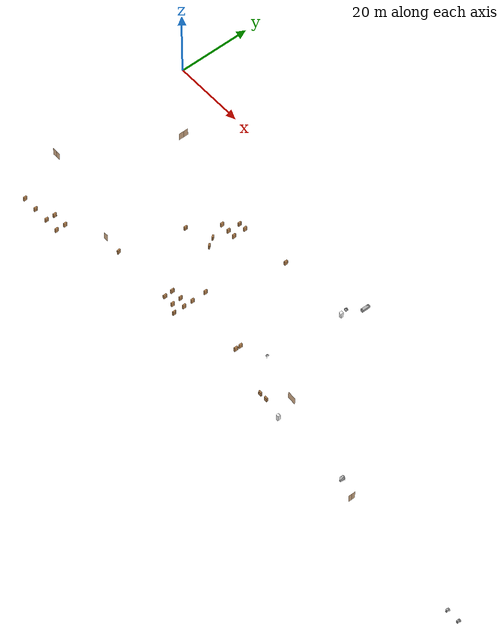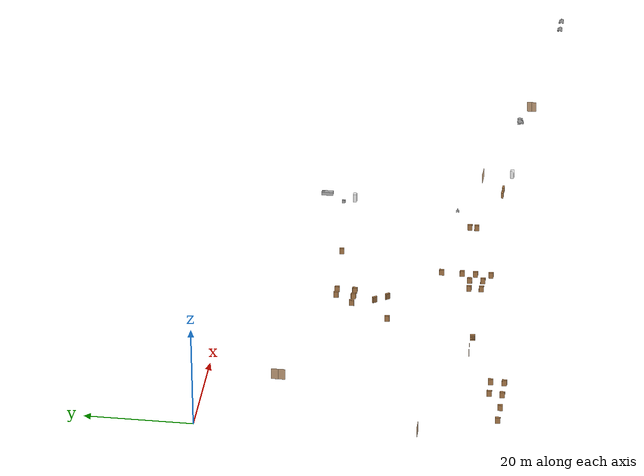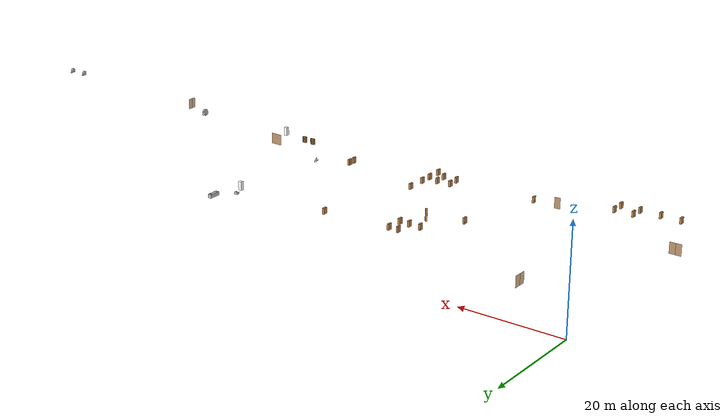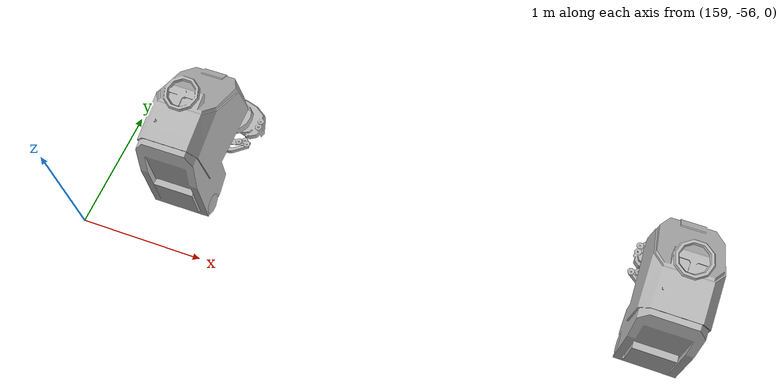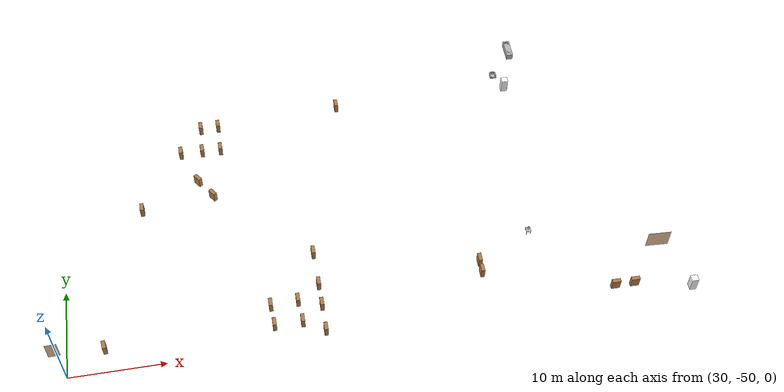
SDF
<sdf version="1.7">
 <world name="sim_world">
  <physics name="10ms" type="ode">
   <max_step_size>0.01</max_step_size>
   <real_time_factor>1.0</real_time_factor>
  </physics>
  <plugin filename="libgz-sim-physics-system.so" name="gz::sim::systems::Physics"/>
  <plugin filename="libgz-sim-user-commands-system.so" name="gz::sim::systems::UserCommands"/>
  <plugin filename="libgz-sim-scene-broadcaster-system.so" name="gz::sim::systems::SceneBroadcaster"/>
  <plugin filename="libdoor.so" name="door"/>
  <plugin filename="liblift.so" name="lift"/>
  <scene><ambient>1 1 1</ambient><background>0.8 0.8 0.8</background><grid>false</grid></scene>
  <light type="directional" name="sun">
   <pose>0 0 10 0 0 0</pose>
   <diffuse>1 1 1 1</diffuse>
   <specular>0.2 0.2 0.2 1</specular>
   <attenuation>
    <range>1000</range>
    <constant>0.09</constant>
    <linear>0.001</linear>
    <quadratic>0.001</quadratic>
   </attenuation>
   <direction>-0.5 0.1 -0.9</direction>
  </light>
  <include>
   <name>Fridge</name>
   <uri>model://Fridge</uri>
   <pose>81.89234267903652 -19.580975229470475 0.0 0 0 -0.0006</pose>
   <static>True</static>
  </include>
  <include>
   <name>Bookshelf</name>
   <uri>model://Bookshelf</uri>
   <pose>61.473724341753524 -19.398828914457916 0.0 0 0 1.5708</pose>
   <static>True</static>
  </include>
  <include>
   <name>KitchenCountertop</name>
   <uri>model://KitchenCountertop</uri>
   <pose>83.79026129321836 -13.78234975470173 0.0 0 0 -0.0098</pose>
   <static>True</static>
  </include>
  <include>
   <name>MiniSofa</name>
   <uri>model://MiniSofa</uri>
   <pose>81.10438330457954 -17.398997055492206 0.0 0 0 1.5708</pose>
   <static>True</static>
  </include>
  <include>
   <name>Bookshelf_2</name>
   <uri>model://Bookshelf</uri>
   <pose>43.02299245471673 -23.55066446364193 0.0 0 0 1.5708</pose>
   <static>True</static>
  </include>
  <include>
   <name>Bookshelf_3</name>
   <uri>model://Bookshelf</uri>
   <pose>45.54725459667171 -20.259548268671924 0.0 0 0 1.5708</pose>
   <static>True</static>
  </include>
  <include>
   <name>Bookshelf_4</name>
   <uri>model://Bookshelf</uri>
   <pose>45.43294094901731 -23.592792984652505 0.0 0 0 1.5708</pose>
   <static>True</static>
  </include>
  <include>
   <name>Bookshelf_5</name>
   <uri>model://Bookshelf</uri>
   <pose>47.528116302901665 -20.240495994062854 0.0 0 0 1.5708</pose>
   <static>True</static>
  </include>
  <include>
   <name>Bookshelf_6</name>
   <uri>model://Bookshelf</uri>
   <pose>47.5090640282926 -23.63089753387064 0.0 0 0 1.5708</pose>
   <static>True</static>
  </include>
  <include>
   <name>Bookshelf_7</name>
   <uri>model://Bookshelf</uri>
   <pose>38.268382355400966 -30.849656563874845 0.0 0 0 1.5708</pose>
   <static>True</static>
  </include>
  <include>
   <name>Bookshelf_8</name>
   <uri>model://Bookshelf</uri>
   <pose>44.693515601689484 -27.89409034326973 0.0 0 0 2.1996</pose>
   <static>True</static>
  </include>
  <include>
   <name>Bookshelf_9</name>
   <uri>model://Bookshelf</uri>
   <pose>46.1584876997549 -30.181430880711083 0.0 0 0 2.188</pose>
   <static>True</static>
  </include>
  <include>
   <name>Bookshelf_10</name>
   <uri>model://Bookshelf</uri>
   <pose>89.11742509328596 -48.86793466603511 0.0 0 0 3.1321</pose>
   <static>True</static>
  </include>
  <include>
   <name>Bookshelf_11</name>
   <uri>model://Bookshelf</uri>
   <pose>87.05370241688124 -48.837138963542 0.0 0 0 3.1357</pose>
   <static>True</static>
  </include>
  <include>
   <name>LampAndStand</name>
   <uri>model://LampAndStand</uri>
   <pose>79.68695977116349 -40.3403172191372 0.0 0 0 1.5708</pose>
   <static>True</static>
  </include>
  <include>
   <name>Bookshelf_12</name>
   <uri>model://Bookshelf</uri>
   <pose>56.071911758842624 -43.45585684895984 0.0 0 0 1.5708</pose>
   <static>True</static>
  </include>
  <include>
   <name>Bookshelf_13</name>
   <uri>model://Bookshelf</uri>
   <pose>56.071911758842624 -45.999499753017155 0.0 0 0 1.5708</pose>
   <static>True</static>
  </include>
  <include>
   <name>Bookshelf_14</name>
   <uri>model://Bookshelf</uri>
   <pose>56.071911758842624 -48.997358738379475 0.0 0 0 1.5708</pose>
   <static>True</static>
  </include>
  <include>
   <name>Bookshelf_15</name>
   <uri>model://Bookshelf</uri>
   <pose>50.807817557480895 -45.22188773459788 0.0 0 0 1.5708</pose>
   <static>True</static>
  </include>
  <include>
   <name>Bookshelf_16</name>
   <uri>model://Bookshelf</uri>
   <pose>50.932642804919624 -47.59373167968031 0.0 0 0 1.5708</pose>
   <static>True</static>
  </include>
  <include>
   <name>Bookshelf_17</name>
   <uri>model://Bookshelf</uri>
   <pose>53.67896249231824 -45.09706248715915 0.0 0 0 1.5708</pose>
   <static>True</static>
  </include>
  <include>
   <name>Bookshelf_18</name>
   <uri>model://Bookshelf</uri>
   <pose>53.85733120115832 -47.629372572699005 0.0 0 0 1.5574</pose>
   <static>True</static>
  </include>
  <include>
   <name>Bookshelf_19</name>
   <uri>model://Bookshelf</uri>
   <pose>56.041608787589404 -39.48904188035441 0.0 0 0 1.5708</pose>
   <static>True</static>
  </include>
  <include>
   <name>Bookshelf_20</name>
   <uri>model://Bookshelf</uri>
   <pose>73.37975353495524 -44.71790579806402 0.0 0 0 1.5708</pose>
   <static>True</static>
  </include>
  <include>
   <name>Bookshelf_21</name>
   <uri>model://Bookshelf</uri>
   <pose>73.41383411238094 -43.3534508729361 0.0 0 0 1.5708</pose>
   <static>True</static>
  </include>
  <include>
   <name>Bookshelf_22</name>
   <uri>model://Bookshelf</uri>
   <pose>34.02087482380503 -47.4250533518914 0.0 0 0 -1.4328</pose>
   <static>True</static>
  </include>
  <include>
   <name>Bookshelf_23</name>
   <uri>model://Bookshelf</uri>
   <pose>6.880827521313181 -54.438014967368346 0.0 0 0 1.5708</pose>
   <static>True</static>
  </include>
  <include>
   <name>Bookshelf_24</name>
   <uri>model://Bookshelf</uri>
   <pose>10.997597030591715 -54.531223293580815 0.0 0 0 1.5708</pose>
   <static>True</static>
  </include>
  <include>
   <name>Bookshelf_25</name>
   <uri>model://Bookshelf</uri>
   <pose>15.352191484990348 -52.17736403875435 0.0 0 0 1.5708</pose>
   <static>True</static>
  </include>
  <include>
   <name>Bookshelf_26</name>
   <uri>model://Bookshelf</uri>
   <pose>19.196891227976447 -52.11199502759565 0.0 0 0 1.5708</pose>
   <static>True</static>
  </include>
  <include>
   <name>Bookshelf_27</name>
   <uri>model://Bookshelf</uri>
   <pose>15.207492744209404 -54.575733348917524 0.0 0 0 1.5708</pose>
   <static>True</static>
  </include>
  <include>
   <name>Bookshelf_28</name>
   <uri>model://Bookshelf</uri>
   <pose>19.159854263111406 -54.633875635224506 0.0 0 0 1.5708</pose>
   <static>True</static>
  </include>
  <include>
   <name>Fridge_2</name>
   <uri>model://Fridge</uri>
   <pose>95.01894927531835 -49.95498190310512 0.0 0 0 1.5708</pose>
   <static>True</static>
  </include>
  <include>
   <name>mopcart_dispenser</name>
   <uri>model://TeleportDispenser</uri>
   <pose>23.346427364707647 -36.437475189844115 0.0 0 0 1.5708</pose>
   <static>True</static>
  </include>
  <include>
   <name>mopcart_collector</name>
   <uri>model://TeleportIngestor</uri>
   <pose>26.063183177712883 -48.37701010735832 0.0 0 0 1.5708</pose>
   <static>True</static>
  </include>
  <include>
   <name>cleanerBotE_0</name>
   <uri>model://CleanerBotE</uri>
   <pose>159.69854730754096 -55.561195828696945 0.0 0 0 1.5709567322986409</pose>
  </include>
  <include>
   <name>cleanerBotE_1</name>
   <uri>model://CleanerBotE</uri>
   <pose>163.4232669936139 -55.62590786486911 0.0 0 0 1.562578286309474</pose>
  </include>
  <include>
   <name>cleanerBotA_0</name>
   <uri>model://CleanerBotA</uri>
   <pose>117.41259866582594 -49.48039959721802 0.0 0 0 -1.5730303359239728</pose>
  </include>
  <model name="n02_door">
   <pose>16.32952389931159 -13.189019220001205 0.0 0 0 1.5676337427711504</pose>
   <link name="right">
    <pose>0.6621519759371044 0 1.11 0 0 0</pose>
    <visual name="right_visual">
     <geometry><box><size>1.3143039518742088 0.03 2.2</size></box></geometry>
     <material>
      <ambient>0.5 0.25 0 0.6</ambient>
      <diffuse>0.5 0.25 0 0.6</diffuse>
      <pbr><metal><metalness>0.0</metalness></metal></pbr>
     </material>
    </visual>
    <collision name="right_collision">
     <geometry><box><size>1.3143039518742088 0.03 2.2</size></box></geometry>
     <surface><contact><collide_bitmask>0x02</collide_bitmask></contact></surface>
    </collision>
    <inertial>
     <mass>50.0</mass>
     <inertia><ixx>20.17041666666667</ixx><iyy>27.364145324634016</iyy><izz>7.201228657967344</izz></inertia>
    </inertial>
   </link>
   <joint name="right_joint" type="revolute">
    <parent>world</parent>
    <child>right</child>
    <axis><xyz>0 0 1</xyz><limit><lower>0</lower><upper>1.6572222222222224</upper></limit></axis>
    <pose>0.6621519759371044 0 0 0 0 0</pose>
   </joint>
   <link name="left">
    <pose>-0.6621519759371044 0 1.11 0 0 0</pose>
    <visual name="left_visual">
     <geometry><box><size>1.3143039518742088 0.03 2.2</size></box></geometry>
     <material>
      <ambient>0.5 0.25 0 0.6</ambient>
      <diffuse>0.5 0.25 0 0.6</diffuse>
      <pbr><metal><metalness>0.0</metalness></metal></pbr>
     </material>
    </visual>
    <collision name="left_collision">
     <geometry><box><size>1.3143039518742088 0.03 2.2</size></box></geometry>
     <surface><contact><collide_bitmask>0x02</collide_bitmask></contact></surface>
    </collision>
    <inertial>
     <mass>50.0</mass>
     <inertia><ixx>20.17041666666667</ixx><iyy>27.364145324634016</iyy><izz>7.201228657967344</izz></inertia>
    </inertial>
   </link>
   <joint name="left_joint" type="revolute">
    <parent>world</parent>
    <child>left</child>
    <axis><xyz>0 0 1</xyz><limit><lower>-1.6572222222222224</lower><upper>0</upper></limit></axis>
    <pose>-0.6621519759371044 0 0 0 0 0</pose>
   </joint>
   <plugin name="register_component" filename="libregister_component.so">
    <component name="Door">
     <v_max_door>0.5</v_max_door>
     <a_max_door>0.3</a_max_door>
     <a_nom_door>0.15</a_nom_door>
     <dx_min_door>0.01</dx_min_door>
     <f_max_door>500.0</f_max_door>
     <ros_interface>true</ros_interface>
     <door name="n02_door" type="DoubleSwingDoor" left_joint_name="left_joint" right_joint_name="right_joint"/>
    </component>
   </plugin>
  </model>
  <model name="n01_door">
   <pose>1.5235249937389859 -40.44986779813934 0.0 0 0 3.134201392889213</pose>
   <link name="right">
    <pose>0.5888709777587251 0 1.11 0 0 0</pose>
    <visual name="right_visual">
     <geometry><box><size>1.1677419555174502 0.03 2.2</size></box></geometry>
     <material>
      <ambient>0.5 0.25 0 0.6</ambient>
      <diffuse>0.5 0.25 0 0.6</diffuse>
      <pbr><metal><metalness>0.0</metalness></metal></pbr>
     </material>
    </visual>
    <collision name="right_collision">
     <geometry><box><size>1.1677419555174502 0.03 2.2</size></box></geometry>
     <surface><contact><collide_bitmask>0x02</collide_bitmask></contact></surface>
    </collision>
    <inertial>
     <mass>50.0</mass>
     <inertia><ixx>20.17041666666667</ixx><iyy>25.8484219778155</iyy><izz>5.685505311148828</izz></inertia>
    </inertial>
   </link>
   <joint name="right_joint" type="revolute">
    <parent>world</parent>
    <child>right</child>
    <axis><xyz>0 0 1</xyz><limit><lower>0</lower><upper>1.6572222222222224</upper></limit></axis>
    <pose>0.5888709777587251 0 0 0 0 0</pose>
   </joint>
   <link name="left">
    <pose>-0.5888709777587251 0 1.11 0 0 0</pose>
    <visual name="left_visual">
     <geometry><box><size>1.1677419555174502 0.03 2.2</size></box></geometry>
     <material>
      <ambient>0.5 0.25 0 0.6</ambient>
      <diffuse>0.5 0.25 0 0.6</diffuse>
      <pbr><metal><metalness>0.0</metalness></metal></pbr>
     </material>
    </visual>
    <collision name="left_collision">
     <geometry><box><size>1.1677419555174502 0.03 2.2</size></box></geometry>
     <surface><contact><collide_bitmask>0x02</collide_bitmask></contact></surface>
    </collision>
    <inertial>
     <mass>50.0</mass>
     <inertia><ixx>20.17041666666667</ixx><iyy>25.8484219778155</iyy><izz>5.685505311148828</izz></inertia>
    </inertial>
   </link>
   <joint name="left_joint" type="revolute">
    <parent>world</parent>
    <child>left</child>
    <axis><xyz>0 0 1</xyz><limit><lower>-1.6572222222222224</lower><upper>0</upper></limit></axis>
    <pose>-0.5888709777587251 0 0 0 0 0</pose>
   </joint>
   <plugin name="register_component" filename="libregister_component.so">
    <component name="Door">
     <v_max_door>0.5</v_max_door>
     <a_max_door>0.3</a_max_door>
     <a_nom_door>0.15</a_nom_door>
     <dx_min_door>0.01</dx_min_door>
     <f_max_door>500.0</f_max_door>
     <ros_interface>true</ros_interface>
     <door name="n01_door" type="DoubleSwingDoor" left_joint_name="left_joint" right_joint_name="right_joint"/>
    </component>
   </plugin>
  </model>
  <model name="s04_door">
   <pose>28.73390968072509 -47.274154409675184 0.0 0 0 -3.1081700415635134</pose>
   <link name="right">
    <pose>0 0 1.11 0 0 0</pose>
    <visual name="right_visual">
     <geometry><box><size>1.2015636603492745 0.03 2.2</size></box></geometry>
     <material>
      <ambient>0.5 0.25 0 0.6</ambient>
      <diffuse>0.5 0.25 0 0.6</diffuse>
      <pbr><metal><metalness>0.0</metalness></metal></pbr>
     </material>
    </visual>
    <collision name="right_collision">
     <geometry><box><size>1.2015636603492745 0.03 2.2</size></box></geometry>
     <surface><contact><collide_bitmask>0x02</collide_bitmask></contact></surface>
    </collision>
    <inertial>
     <mass>50.0</mass>
     <inertia><ixx>20.17041666666667</ixx><iyy>26.182313457799783</iyy><izz>6.019396791133111</izz></inertia>
    </inertial>
   </link>
   <joint name="right_joint" type="revolute">
    <parent>world</parent>
    <child>right</child>
    <axis><xyz>0 0 -1</xyz><limit><lower>0</lower><upper>1.6572222222222224</upper></limit></axis>
    <pose>0.6057818301746373 0 0 0 0 0</pose>
   </joint>
   <plugin name="register_component" filename="libregister_component.so">
    <component name="Door">
     <v_max_door>0.5</v_max_door>
     <a_max_door>0.3</a_max_door>
     <a_nom_door>0.15</a_nom_door>
     <dx_min_door>0.01</dx_min_door>
     <f_max_door>500.0</f_max_door>
     <ros_interface>true</ros_interface>
     <door name="s04_door" type="SwingDoor" left_joint_name="empty_joint" right_joint_name="right_joint"/>
    </component>
   </plugin>
  </model>
  <model name="s08_door">
   <pose>93.01533981018017 -44.236384193881804 0.0 0 0 -0.04792369781717709</pose>
   <link name="right">
    <pose>0 0 1.11 0 0 0</pose>
    <visual name="right_visual">
     <geometry><box><size>2.4328097402213444 0.03 2.2</size></box></geometry>
     <material>
      <ambient>0.5 0.25 0 0.6</ambient>
      <diffuse>0.5 0.25 0 0.6</diffuse>
      <pbr><metal><metalness>0.0</metalness></metal></pbr>
     </material>
    </visual>
    <collision name="right_collision">
     <geometry><box><size>2.4328097402213444 0.03 2.2</size></box></geometry>
     <surface><contact><collide_bitmask>0x02</collide_bitmask></contact></surface>
    </collision>
    <inertial>
     <mass>50.0</mass>
     <inertia><ixx>20.17041666666667</ixx><iyy>44.8273468004827</iyy><izz>24.664430133816023</izz></inertia>
    </inertial>
   </link>
   <joint name="right_joint" type="revolute">
    <parent>world</parent>
    <child>right</child>
    <axis><xyz>0 0 1</xyz><limit><lower>0</lower><upper>1.57</upper></limit></axis>
    <pose>1.2214048701106721 0 0 0 0 0</pose>
   </joint>
   <plugin name="register_component" filename="libregister_component.so">
    <component name="Door">
     <v_max_door>0.5</v_max_door>
     <a_max_door>0.3</a_max_door>
     <a_nom_door>0.15</a_nom_door>
     <dx_min_door>0.01</dx_min_door>
     <f_max_door>500.0</f_max_door>
     <ros_interface>true</ros_interface>
     <door name="s08_door" type="SwingDoor" left_joint_name="empty_joint" right_joint_name="right_joint"/>
    </component>
   </plugin>
  </model>
  <model name="zone_4_door">
   <pose>122.95221175215931 -51.78087963438976 0.0 0 0 1.576711873276658</pose>
   <link name="right">
    <pose>0.4720037254296668 0 1.11 0 0 0</pose>
    <visual name="right_visual">
     <geometry><box><size>0.9340074508593336 0.03 2.2</size></box></geometry>
     <material>
      <ambient>0.5 0.25 0 0.6</ambient>
      <diffuse>0.5 0.25 0 0.6</diffuse>
      <pbr><metal><metalness>0.0</metalness></metal></pbr>
     </material>
    </visual>
    <collision name="right_collision">
     <geometry><box><size>0.9340074508593336 0.03 2.2</size></box></geometry>
     <surface><contact><collide_bitmask>0x02</collide_bitmask></contact></surface>
    </collision>
    <inertial>
     <mass>50.0</mass>
     <inertia><ixx>20.17041666666667</ixx><iyy>23.801541326086465</iyy><izz>3.6386246594197935</izz></inertia>
    </inertial>
   </link>
   <joint name="right_joint" type="revolute">
    <parent>world</parent>
    <child>right</child>
    <axis><xyz>0 0 -1</xyz><limit><lower>0</lower><upper>1.57</upper></limit></axis>
    <pose>0.4720037254296668 0 0 0 0 0</pose>
   </joint>
   <link name="left">
    <pose>-0.4720037254296668 0 1.11 0 0 0</pose>
    <visual name="left_visual">
     <geometry><box><size>0.9340074508593336 0.03 2.2</size></box></geometry>
     <material>
      <ambient>0.5 0.25 0 0.6</ambient>
      <diffuse>0.5 0.25 0 0.6</diffuse>
      <pbr><metal><metalness>0.0</metalness></metal></pbr>
     </material>
    </visual>
    <collision name="left_collision">
     <geometry><box><size>0.9340074508593336 0.03 2.2</size></box></geometry>
     <surface><contact><collide_bitmask>0x02</collide_bitmask></contact></surface>
    </collision>
    <inertial>
     <mass>50.0</mass>
     <inertia><ixx>20.17041666666667</ixx><iyy>23.801541326086465</iyy><izz>3.6386246594197935</izz></inertia>
    </inertial>
   </link>
   <joint name="left_joint" type="revolute">
    <parent>world</parent>
    <child>left</child>
    <axis><xyz>0 0 -1</xyz><limit><lower>-1.57</lower><upper>0</upper></limit></axis>
    <pose>-0.4720037254296668 0 0 0 0 0</pose>
   </joint>
   <plugin name="register_component" filename="libregister_component.so">
    <component name="Door">
     <v_max_door>0.5</v_max_door>
     <a_max_door>0.3</a_max_door>
     <a_nom_door>0.15</a_nom_door>
     <dx_min_door>0.01</dx_min_door>
     <f_max_door>500.0</f_max_door>
     <ros_interface>true</ros_interface>
     <door name="zone_4_door" type="DoubleSwingDoor" left_joint_name="left_joint" right_joint_name="right_joint"/>
    </component>
   </plugin>
  </model>
  <rmf_charger_waypoints name="charger_waypoints">
   <rmf_vertex name="charger_tinyRobot_3" x="267.0690369387946" y="-61.44563866107981" level="L1"/>
   <rmf_vertex name="charger_tinyRobot_2" x="265.0190286152335" y="-61.44563866107981" level="L1"/>
   <rmf_vertex name="charger_tinyRobot_1" x="262.8078150543551" y="-61.44563866107981" level="L1"/>
   <rmf_vertex name="charger_tinyRobot_0" x="260.3432555143001" y="-61.4225624146783" level="L1"/>
   <rmf_vertex name="n03" x="21.776503512545712" y="-27.451042836735567" level="L1"/>
   <rmf_vertex name="charger_deliveryRobot_0" x="12.14664628201452" y="-1.7813876759479343" level="L1"/>
   <rmf_vertex name="charger_deliveryRobot_1" x="15.053432109870556" y="-6.301950436316086" level="L1"/>
   <rmf_vertex name="charger_deliveryRobot_2" x="14.776845640545796" y="-9.279278953349664" level="L1"/>
   <rmf_vertex name="n13" x="86.4971624814258" y="-9.632567252350587" level="L1"/>
   <rmf_vertex name="s08" x="96.59527863359884" y="-51.964504143122" level="L1"/>
   <rmf_vertex name="s11" x="152.34773630524631" y="-44.31862925000672" level="L1"/>
   <rmf_vertex name="s03" x="28.719661535704944" y="-51.1928870214547" level="L1"/>
   <rmf_vertex name="s07" x="67.96710086476676" y="-49.36132288091133" level="L1"/>
   <rmf_vertex name="charger_cleanerBotE_0" x="159.69854730754096" y="-55.561195828696945" level="L1"/>
   <rmf_vertex name="charger_cleanerBotE_1" x="163.4232669936139" y="-55.62590786486911" level="L1"/>
   <rmf_vertex name="charger_cleanerBotA_0" x="117.41259866582594" y="-49.48039959721802" level="L1"/>
  </rmf_charger_waypoints>
  <plugin filename="libcrowd_simulator.so" name="crowd_simulation">
   <behavior_file>behavior_file.xml</behavior_file>
   <scene_file>scene_file.xml</scene_file>
   <update_time_step>0.1</update_time_step>
   <model_type>
    <typename>human</typename>
    <animation>walk</animation>
    <animation_speed>1</animation_speed>
    <filename>model://MaleVisitorPhone</filename>
    <initial_pose>0 0 0 0 0 0</initial_pose>
   </model_type>
   <external_agent>tinyRobot_3</external_agent>
   <external_agent>deliveryRobot_2</external_agent>
   <external_agent>tinyRobot_2</external_agent>
   <external_agent>deliveryRobot_0</external_agent>
   <external_agent>deliveryRobot_1</external_agent>
   <external_agent>tinyRobot_0</external_agent>
   <external_agent>tinyRobot_1</external_agent>
   <external_agent>cleanerBotE_0</external_agent>
   <external_agent>cleanerBotE_1</external_agent>
   <external_agent>cleanerBotA_0</external_agent>
   <external_agent>caddy</external_agent>
  </plugin>
 </world>
</sdf>

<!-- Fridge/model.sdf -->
<sdf version="1.6">
  <model name="Fridge">
    <static>true</static>
    <link name="base_link">
      <visual name="visual">
        <geometry>
          <mesh>
            <uri>meshes/fridge.dae</uri>
          </mesh>
        </geometry>
        <material>
          <diffuse>1.0 1.0 1.0</diffuse>
          <specular>1.0 1.0 1.0</specular>
          <pbr>
            <metal>
              <albedo_map>materials/textures/Fridge_Albedo.jpg</albedo_map>
              <normal_map>materials/textures/Fridge_Normal.png</normal_map>
              <roughness_map>materials/textures/Fridge_Roughness.jpg</roughness_map>
              <metalness_map>materials/textures/Fridge_Metalness.jpg</metalness_map>
            </metal>
          </pbr>
        </material>
      </visual>
      <collision name="Box001">
        <pose>0.0 0.0 0.867923 0.0 0.0 0.0</pose>
        <geometry>
          <box>
            <size>0.734673 0.7239 1.73585</size>
          </box>
        </geometry>
      </collision>
    </link>
  </model>
</sdf>

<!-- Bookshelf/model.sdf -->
<sdf version="1.5">
  <model name="Bookshelf">
    <static>true</static>
    <link name="link">
      <inertial>
        <mass>1.0</mass>
      </inertial>
      <collision name="back">
        <pose>0 0.005 0.6 0 0 0</pose>
        <geometry>
          <box>
            <size>0.9 0.01 1.2</size>
          </box>
        </geometry>
      </collision>
      <visual name="visual1">
        <pose>0 0.005 0.6 0 0 0</pose>
        <geometry>
          <box>
            <size>0.9 0.01 1.2</size>
          </box>
        </geometry>
        <material>
          <diffuse>1.0 1.0 1.0</diffuse>
          <script>
            <uri>file://media/materials/scripts/gazebo.material</uri>
            <name>Gazebo/Wood</name>
          </script>
          <!-- PBR for Ignition, material scripts for gazebo classic-->
          <pbr>
            <metal>
              <albedo_map>model://Bookshelf/bookshelf_diffuse.jpg</albedo_map>
            </metal>
          </pbr>
        </material>
      </visual>
      <collision name="left_side">
        <pose>0.45 -0.195 0.6 0 0 0</pose>
        <geometry>
          <box>
            <size>0.02 0.4 1.2</size>
          </box>
        </geometry>
      </collision>
      <visual name="visual2">
        <pose>0.45 -0.195 0.6 0 0 0</pose>
        <geometry>
          <box>
            <size>0.02 0.4 1.2</size>
          </box>
        </geometry>
        <material>
          <diffuse>1.0 1.0 1.0</diffuse>
          <script>
            <uri>file://media/materials/scripts/gazebo.material</uri>
            <name>Gazebo/Wood</name>
          </script>
          <!-- PBR for Ignition, material scripts for gazebo classic-->
          <pbr>
            <metal>
              <albedo_map>model://Bookshelf/bookshelf_diffuse.jpg</albedo_map>
            </metal>
          </pbr>
        </material>
      </visual>
      <collision name="right_side">
        <pose>-0.45 -0.195 0.6 0 0 0</pose>
        <geometry>
          <box>
            <size>0.02 0.4 1.2</size>
          </box>
        </geometry>
      </collision>
      <visual name="visual3">
        <pose>-0.45 -0.195 0.6 0 0 0</pose>
        <geometry>
          <box>
            <size>0.02 0.4 1.2</size>
          </box>
        </geometry>
        <material>
          <diffuse>1.0 1.0 1.0</diffuse>
          <script>
            <uri>file://media/materials/scripts/gazebo.material</uri>
            <name>Gazebo/Wood</name>
          </script>
          <!-- PBR for Ignition, material scripts for gazebo classic-->
          <pbr>
            <metal>
              <albedo_map>model://Bookshelf/bookshelf_diffuse.jpg</albedo_map>
            </metal>
          </pbr>
        </material>
      </visual>
      <collision name="bottom">
        <pose>0 -0.195 0.03 0 0 0</pose>
        <geometry>
          <box>
            <size>0.88 0.4 0.06</size>
          </box>
        </geometry>
      </collision>
      <visual name="visual4">
        <pose>0 -0.195 0.03 0 0 0</pose>
        <geometry>
          <box>
            <size>0.88 0.4 0.06</size>
          </box>
        </geometry>
        <material>
          <diffuse>1.0 1.0 1.0</diffuse>
          <script>
            <uri>file://media/materials/scripts/gazebo.material</uri>
            <name>Gazebo/Wood</name>
          </script>
          <!-- PBR for Ignition, material scripts for gazebo classic-->
          <pbr>
            <metal>
              <albedo_map>model://Bookshelf/bookshelf_diffuse.jpg</albedo_map>
            </metal>
          </pbr>
        </material>
      </visual>
      <collision name="top">
        <pose>0 -0.195 1.19 0 0 0</pose>
        <geometry>
          <box>
            <size>0.88 0.4 0.02</size>
          </box>
        </geometry>
      </collision>
      <visual name="visual5">
        <pose>0 -0.195 1.19 0 0 0</pose>
        <geometry>
          <box>
            <size>0.88 0.4 0.02</size>
          </box>
        </geometry>
        <material>
          <diffuse>1.0 1.0 1.0</diffuse>
          <script>
            <uri>file://media/materials/scripts/gazebo.material</uri>
            <name>Gazebo/Wood</name>
          </script>
          <!-- PBR for Ignition, material scripts for gazebo classic-->
          <pbr>
            <metal>
              <albedo_map>model://Bookshelf/bookshelf_diffuse.jpg</albedo_map>
            </metal>
          </pbr>
        </material>
      </visual>
      <collision name="low_shelf">
        <pose>0 -0.195 0.43 0 0 0</pose>
        <geometry>
          <box>
            <size>0.88 0.4 0.02</size>
          </box>
        </geometry>
      </collision>
      <visual name="visual6">
        <pose>0 -0.195 0.43 0 0 0</pose>
        <geometry>
          <box>
            <size>0.88 0.4 0.02</size>
          </box>
        </geometry>
        <material>
          <diffuse>1.0 1.0 1.0</diffuse>
          <script>
            <uri>file://media/materials/scripts/gazebo.material</uri>
            <name>Gazebo/Wood</name>
          </script>
          <!-- PBR for Ignition, material scripts for gazebo classic-->
          <pbr>
            <metal>
              <albedo_map>model://Bookshelf/bookshelf_diffuse.jpg</albedo_map>
            </metal>
          </pbr>
        </material>
      </visual>
      <collision name="high_shelf">
        <pose>0 -0.195 0.8 0 0 0</pose>
        <geometry>
          <box>
            <size>0.88 0.4 0.02</size>
          </box>
        </geometry>
      </collision>
      <visual name="visual7">
        <pose>0 -0.195 0.8 0 0 0</pose>
        <geometry>
          <box>
            <size>0.88 0.4 0.02</size>
          </box>
        </geometry>
        <material>
          <diffuse>1.0 1.0 1.0</diffuse>
          <script>
            <uri>file://media/materials/scripts/gazebo.material</uri>
            <name>Gazebo/Wood</name>
          </script>
          <!-- PBR for Ignition, material scripts for gazebo classic-->
          <pbr>
            <metal>
              <albedo_map>model://Bookshelf/bookshelf_diffuse.jpg</albedo_map>
            </metal>
          </pbr>
        </material>
      </visual>
    </link>
  </model>
</sdf>

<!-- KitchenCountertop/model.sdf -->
<sdf version="1.5">
  <model name="KitchenCountertop">
    <link name="link">
      <pose>0 0 0 0 0 0</pose>

        <visual name="visual">
          <geometry>
            <mesh><uri>model://KitchenCountertop/meshes/Counter.obj</uri></mesh>
          </geometry>
        </visual>

        <collision name="collision">
          <geometry>
            <mesh><uri>model://KitchenCountertop/meshes/Counter.obj</uri></mesh>
          </geometry>
        </collision>

    </link>
  </model>
</sdf>

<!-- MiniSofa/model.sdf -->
<sdf version="1.6">
  <model name='MiniSofa'>
    <link name="body">
      <pose>0 0 0 0 0 -1.57079632679</pose>

      <visual name="visual">
        <geometry>
          <mesh>
            <uri>model://MiniSofa/meshes/minisofa.obj</uri>
            <scale>1.00 1.00 1.00</scale>
          </mesh>
        </geometry>
      </visual>

      <collision name="collision">
        <geometry>
          <mesh>
            <uri>model://MiniSofa/meshes/minisofa.obj</uri>
            <scale>1.00 1.00 1.00</scale>
          </mesh>
        </geometry>
      </collision>

    </link>
  </model>
</sdf>

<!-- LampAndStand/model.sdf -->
<sdf version="1.6">
  <model name="LampAndStand">
   <static>true</static>
    <link name="body">
      <pose>0 0 0 0 0 0</pose>

      <visual name="visual">
        <geometry>
          <mesh>
            <uri>model://LampAndStand/meshes/LampAndStand.obj</uri>
          </mesh>
        </geometry>
      </visual>

      <collision name="collision">
        <geometry>
          <mesh>
            <uri>model://LampAndStand/meshes/LampAndStand_Col.obj</uri>
          </mesh>
        </geometry>
      </collision>

    </link>
  </model>
</sdf>

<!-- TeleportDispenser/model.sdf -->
<sdf version="1.6">
  <model name="TeleportDispenser">
    <pose>0.0 0.0 0.0 0.0 0.0 0.0</pose>
    <static>true</static>

    <link name="visual_link">
      <pose>0.0 0.0 0.05 0.0 0.0 0.0</pose>
      <visual name="visual">
        <geometry>
          <box>
            <size>0.1 0.1 0.1</size>
          </box>
        </geometry>
        <material>
          <ambient>128 192 210 0.1</ambient>
          <diffuse>128 192 210 0.1</diffuse>
        </material>
      </visual>
    </link>

    <plugin name="teleport_dispenser" filename="libteleport_dispenser.so">
    </plugin>

  </model>
</sdf>

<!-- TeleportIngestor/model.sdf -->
<sdf version="1.6">
  <model name="TeleportIngestor">
    <pose>0.0 0.0 0.0 0.0 0.0 0.0</pose>
    <static>true</static>

    <link name="visual_link">
      <pose>0.0 0.0 0.05 0.0 0.0 0.0</pose>
      <visual name="visual">
        <geometry>
          <box>
            <size>0.1 0.1 0.1</size>
          </box>
        </geometry>
        <material>
          <ambient>128 192 210 0.1</ambient>
          <diffuse>128 192 210 0.1</diffuse>
        </material>
      </visual>
    </link>

    <plugin name="teleport_ingestor" filename="libteleport_ingestor.so">
    </plugin>

  </model>
</sdf>

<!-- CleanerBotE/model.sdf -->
<sdf version="1.6">
  <model name="CleanerBotE">

    <!-- TODO: Find actual physical properties for Avidbot instead of duplicating -->
    <!-- Note: rotational axis of the robot should located at the origin  -->

    <plugin name="slotcar" filename="libslotcar.so">

      <!-- Forward / Backward -->
      <nominal_drive_speed>0.7</nominal_drive_speed>
      <nominal_drive_acceleration>0.5</nominal_drive_acceleration>
      <max_drive_acceleration>0.6</max_drive_acceleration>

      <!-- Turning -->
      <nominal_turn_speed>0.4</nominal_turn_speed>
      <nominal_turn_acceleration>1.0</nominal_turn_acceleration>
      <max_turn_acceleration>1.2</max_turn_acceleration>

      <!-- Stop distance and radius  -->
      <stop_distance>1.5</stop_distance>
      <stop_radius>1.5</stop_radius>

      <!-- Can the robot drive backwards -->
      <reversible>false</reversible>

      <!-- Coordinate systems -->
      <crs>
        <cartesian_crs>EPSG:3414</cartesian_crs> <!-- cartesian coordinate robot is operating in -->
        <robot_state_crs>EPSG:4326</robot_state_crs> <!-- coordinates published in /gps_robot_state -->
      </crs>

      <!-- Battery params -->
      <nominal_voltage>24.0</nominal_voltage>
      <nominal_capacity>30.0</nominal_capacity>
      <charging_current>10.0</charging_current>

      <!-- Physical params -->
      <mass>70.0</mass>
      <inertia>40.0</inertia>
      <friction_coefficient>0.22</friction_coefficient>

      <!-- Power systems -->
      <nominal_power>100.0</nominal_power>
    </plugin>

    <!-- Main CleanerbotE Body -->

    <link name="body">
      <pose>0 0 0 0 0 0</pose>

      <inertial>
        <pose>0.36 0 0.43294142 0 0 0</pose>
        <mass>10.0</mass> <!-- Mass reduced to prevent model rolling when stationary -->
        <inertia>
          <ixx>2.441</ixx>
          <iyy>3.2373</iyy>
          <izz>2.332</izz>
        </inertia>
      </inertial>

      <visual name="visual">
        <pose>0.35 0 0 0 0 0</pose>
        <geometry>
          <mesh>
            <uri>model://CleanerBotE/meshes/CleanerBotE.obj</uri>
          </mesh>
        </geometry>
      </visual>
      <collision name="body_collision">
        <pose>0.35 0 0.04 0 0 0</pose>
        <geometry>
          <mesh>
            <uri>model://CleanerBotE/meshes/CleanerBotE_Col.obj</uri>
          </mesh>
        </geometry>
      </collision>

      <collision name="front_virtual_wheel_collision">
        <pose>0.7 0.0 0.09 0 0 0</pose>
        <geometry>
          <sphere>
            <radius>0.1</radius>
          </sphere>
        </geometry>
        <surface>
          <contact>
            <ode>
              <kp>1e+08</kp>
              <min_depth>0.005</min_depth>
            </ode>
          </contact>
          <friction>
            <ode>
              <mu>0</mu>
              <mu2>0</mu2>
            </ode>
          </friction>
        </surface>
      </collision>
    </link>

    <!-- Left wheel link and revolute joint -->

    <link name="tire_left">
      <pose>0 0.20 0.08 0 0 0</pose>

      <inertial>
        <pose>0 0 0 0 0 0</pose>
        <mass>3.0</mass>
        <inertia>
          <ixx>0.02</ixx>
          <iyy>0.02</iyy>
          <izz>0.02</izz>
        </inertia>
      </inertial>

      <visual name="tire_left">
        <geometry>
          <mesh>
            <uri>model://CleanerBotE/meshes/CleanerBotE_Wheel.obj</uri>
          </mesh>
        </geometry>
      </visual>

      <collision name='tire_left_collision'>
        <geometry>
          <sphere>
            <radius>0.09</radius>
          </sphere>
        </geometry>
        <surface>
          <contact>
            <ode>
              <kp>10000000.0</kp>
              <kd>1.0</kd>
            </ode>
          </contact>
        </surface>
      </collision>
    </link>

    <joint name="joint_tire_left" type="revolute">
      <parent>body</parent>
      <child>tire_left</child>
      <axis>
        <xyz>0 1 0</xyz>
      </axis>
    </joint>

    <!-- Right wheel link and revolute joint -->

    <link name="tire_right">
      <pose>0 -0.20 0.08 0 0 0</pose>
      <inertial>
        <pose>0 0 0 0 0 0</pose>
        <mass>3.0</mass>
        <inertia>
          <ixx>0.02</ixx>
          <iyy>0.02</iyy>
          <izz>0.02</izz>
        </inertia>
      </inertial>

      <visual name="tire_right">
        <geometry>
          <mesh>
            <uri>model://CleanerBotE/meshes/CleanerBotE_Wheel.obj</uri>
          </mesh>
        </geometry>
      </visual>

      <collision name='tire_right_collision'>
        <geometry>
          <sphere>
            <radius>0.09</radius>
          </sphere>
        </geometry>
        <surface>
          <contact>
            <ode>
              <kp>10000000.0</kp>
              <kd>1.0</kd>
            </ode>
          </contact>
        </surface>
      </collision>
    </link>

    <joint name="joint_tire_right" type="revolute">
      <parent>body</parent>
      <child>tire_right</child>
      <axis>
        <xyz>0 1 0</xyz>
      </axis>
    </joint>

  </model>
</sdf>

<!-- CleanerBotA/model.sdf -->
<sdf version="1.6">
  <model name='CleanerBotA'>

    <!-- TODO: Find actual physical properties for CleanerBotA instead of duplicating -->
    <!-- Note: rotational axis of the robot should located at the origin  -->

    <plugin name="slotcar" filename="libslotcar.so">

      <!-- Forward / Backward -->
      <nominal_drive_speed>0.7</nominal_drive_speed>
      <nominal_drive_acceleration>0.5</nominal_drive_acceleration>
      <max_drive_acceleration>0.6</max_drive_acceleration>

      <!-- Turning -->
      <nominal_turn_speed>0.4</nominal_turn_speed>
      <nominal_turn_acceleration>1.0</nominal_turn_acceleration>
      <max_turn_acceleration>1.2</max_turn_acceleration>

      <!-- Stop distance and radius  -->
      <stop_distance>1.5</stop_distance>
      <stop_radius>1.5</stop_radius>

      <!-- Can the robot drive backwards -->
      <reversible>false</reversible>

      <!-- Battery params -->
      <nominal_voltage>24.0</nominal_voltage>
      <nominal_capacity>20.0</nominal_capacity>
      <charging_current>10.0</charging_current>

      <!-- Physical params -->
      <mass>70.0</mass>
      <inertia>40.0</inertia>
      <friction_coefficient>0.22</friction_coefficient>

      <!-- Power systems -->
      <nominal_power>100.0</nominal_power>

    </plugin>

    <!-- Main CleanerBotA Body -->

    <link name="body">
      <pose>0 0 0 0 0 0</pose>

      <inertial>
        <pose>0.36 0 0.43294142 0 0 0</pose>
        <mass>15.0</mass> <!-- Mass reduced to prevent model rolling when stationary -->
        <inertia>
          <ixx>3.016</ixx>
          <iyy>2.332</iyy>
          <izz>2.425</izz>
        </inertia>
      </inertial>

      <visual name="visual">
        <pose frame=''>0.36 0 0 0 0 0</pose>
        <geometry>
          <mesh><uri>model://CleanerBotA/meshes/CleanerBotA.obj</uri></mesh>
        </geometry>
      </visual>
      <collision name="body_collision">
        <pose frame=''>0.46 0 0.7 0 0 0</pose>
        <geometry>
          <box>
            <size>1.3 0.8 1.2</size>
          </box>
        </geometry>
      </collision>

      <visual name="WheelFront">
        <pose>0.86 0.0 0.07 0 0 0</pose>
        <geometry>
          <mesh>
            <uri>model://CleanerBotA/meshes/CleanerBotA_WheelFront.obj</uri>
          </mesh>
        </geometry>
      </visual>
      <collision name='front_wheel_collision'>
        <pose>0.86 0.0 0.06 0 0 0</pose>
        <geometry>
          <sphere>
            <radius>0.1</radius>
          </sphere>
        </geometry>
        <surface>
          <contact>
            <ode>
              <kp>1e+08</kp>
              <min_depth>0.005</min_depth>
            </ode>
          </contact>
          <friction>
            <ode>
              <mu>0</mu>
              <mu2>0</mu2>
            </ode>
          </friction>
        </surface>
      </collision>

    </link>

    <!-- Left wheel link and revolute joint -->

    <link name="tire_left">
      <pose>0 0.26 0.08 0 0 0</pose>

      <inertial>
        <pose>0 0 0 0 0 0</pose>
        <mass>5.0</mass>
        <inertia>
          <ixx>0.02</ixx>
          <iyy>0.02</iyy>
          <izz>0.02</izz>
        </inertia>
      </inertial>

      <visual name="tire_left">
        <geometry>
          <mesh>
            <uri>model://CleanerBotA/meshes/CleanerBotA_WheelBack.obj</uri>
          </mesh>
        </geometry>
      </visual>

      <collision name='tire_left_collision'>
        <geometry>
          <sphere>
            <radius>0.1</radius>
          </sphere>
        </geometry>
        <surface>
          <contact>
            <ode>
              <kp>10000000.0</kp>
              <kd>1.0</kd>
            </ode>
          </contact>
        </surface>
      </collision>
    </link>

    <joint name="joint_tire_left" type="revolute">
      <parent>body</parent>
      <child>tire_left</child>
      <axis>
        <xyz>0 1 0</xyz>
      </axis>
    </joint>

    <!-- Right wheel link and revolute joint -->

    <link name="tire_right">
      <pose>0 -0.26 0.08 0 0 0</pose>
      <inertial>
        <pose>0 0 0 0 0 0</pose>
        <mass>5.0</mass>
        <inertia>
          <ixx>0.02</ixx>
          <iyy>0.02</iyy>
          <izz>0.02</izz>
        </inertia>
      </inertial>

      <visual name="tire_right">
        <geometry>
          <mesh>
            <uri>model://CleanerBotA/meshes/CleanerBotA_WheelBack.obj</uri>
          </mesh>
        </geometry>
      </visual>

      <collision name='tire_right_collision'>
        <geometry>
          <sphere>
            <radius>0.1</radius>
          </sphere>
        </geometry>
        <surface>
          <contact>
            <ode>
              <kp>10000000.0</kp>
              <kd>1.0</kd>
            </ode>
          </contact>
        </surface>
      </collision>
    </link>

    <joint name="joint_tire_right" type="revolute">
      <parent>body</parent>
      <child>tire_right</child>
      <axis>
        <xyz>0 1 0</xyz>
      </axis>
    </joint>

  </model>
</sdf>
